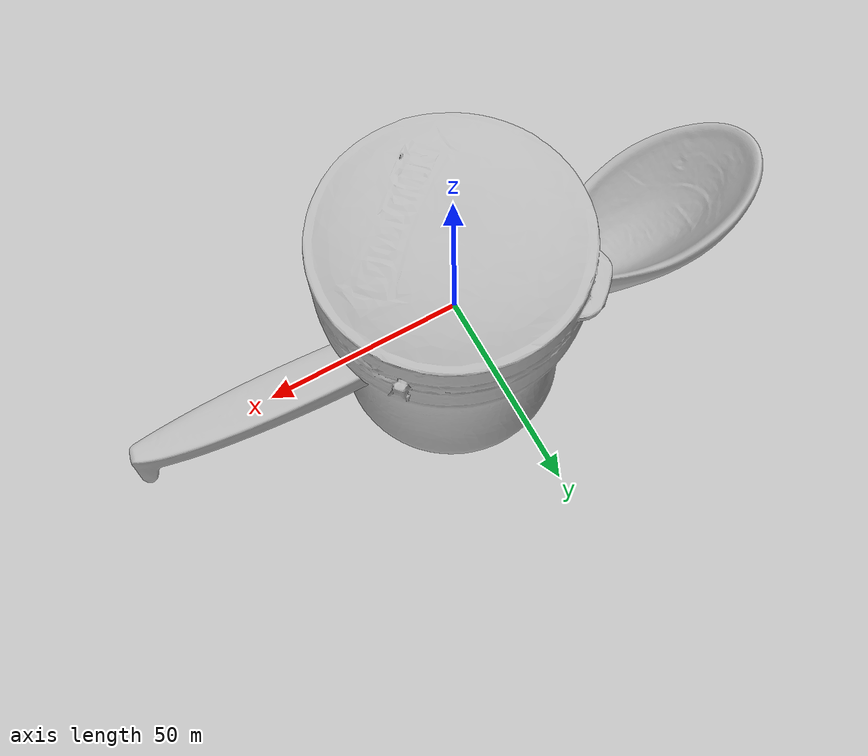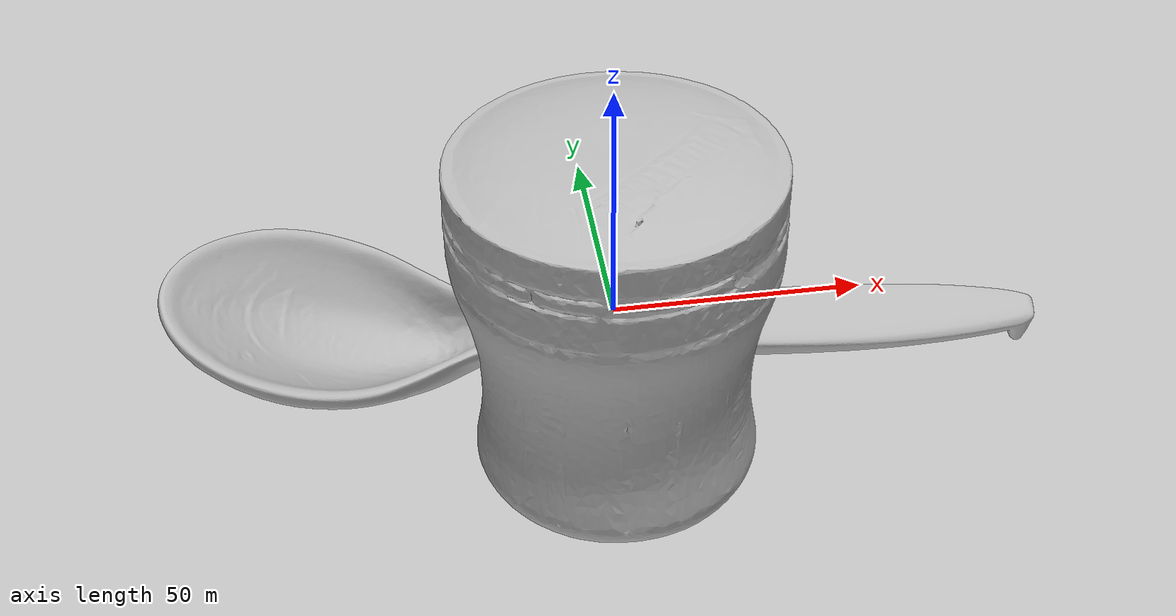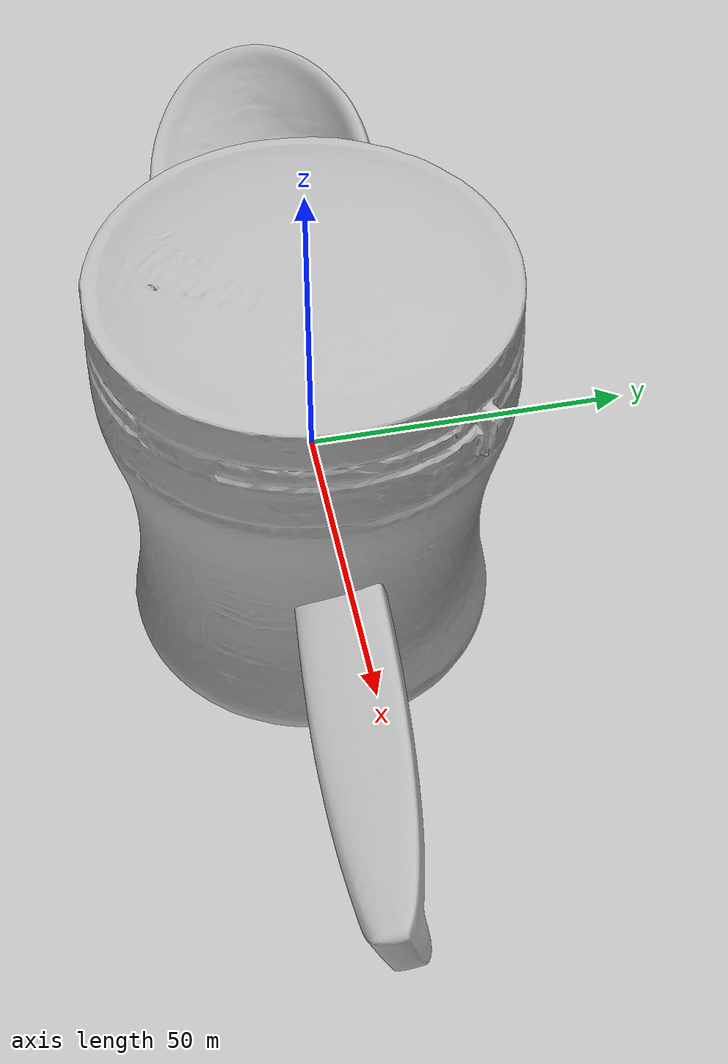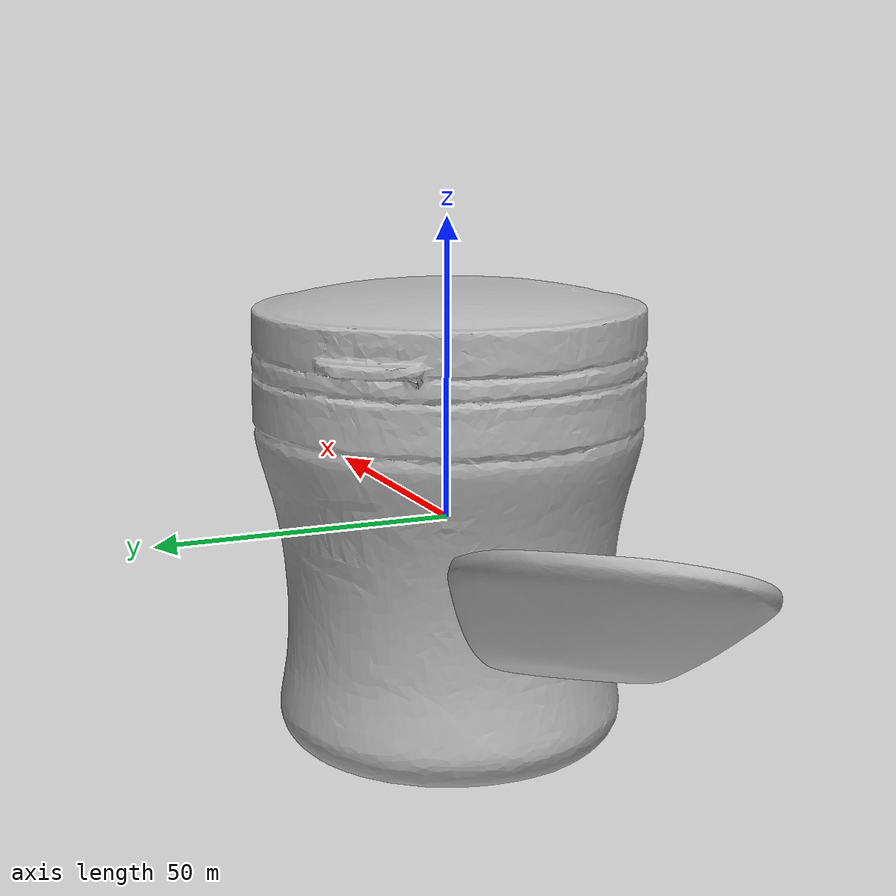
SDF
<sdf version="1.4">
 <world name="default">
  <light name="light1" type="point">
   <pose>0 0 1 0 0 0</pose>
   <diffuse>3 3 3 1</diffuse>
   <specular>3 3 3 1</specular>
  </light>
  <light name="light2" type="point">
   <pose>0 0.5 2 0 0 0</pose>
   <diffuse>1 1 1 1</diffuse>
   <specular>1 1 1 1</specular>
  </light>
  <light name="light3" type="point">
   <pose>0 0.5 2 0 0 0</pose>
   <diffuse>3 3 3 1</diffuse>
   <specular>3 3 3 1</specular>
  </light>
  <scene><ambient>0.7 0.7 0.7</ambient></scene>
  <model name="bottle1">
   <link name="link_bottle1">
    <collision name="default">
     <geometry>
      <mesh><uri>model://green_arrow/collision_meshes/collision.obj</uri><scale>1.0 1.0 1.0</scale></mesh>
     </geometry>
     <surface><friction><ode><mu>0.5</mu><mu2>0.5</mu2></ode></friction></surface>
    </collision>
    <visual name="default">
     <geometry>
      <mesh><uri>model://green_arrow/visual_meshes/visual.dae</uri><scale>1.0 1.0 1.0</scale></mesh>
     </geometry>
    </visual>
    <inertial>
     <mass>0.31872013211250305</mass>
     <pose>0.0005358478520065546 -0.0008270691032521427 0.002210969803854823 -0.06332250060756175 0.012985582117300467 0.6741007804522225</pose>
     <inertia>
      <ixx>0.00023120124</ixx>
      <iyy>0.000230851</iyy>
      <izz>0.0001492862</izz>
      <ixy>0</ixy>
      <ixz>0</ixz>
      <iyz>0</iyz>
     </inertia>
    </inertial>
   </link>
   <pose>-0.2589655816555023 0.35861289501190186 0.03903083875775337 0.03851765220285323 0.02462850136724824 0.07112023168834197</pose>
  </model>
  <model name="bottle2">
   <link name="link_bottle2">
    <collision name="default">
     <geometry>
      <mesh><uri>model://pigeon/collision_meshes/collision.obj</uri><scale>1.0 1.0 1.0</scale></mesh>
     </geometry>
     <surface><friction><ode><mu>0.5</mu><mu2>0.5</mu2></ode></friction></surface>
    </collision>
    <visual name="default">
     <geometry><mesh><uri>model://pigeon/visual_meshes/visual.dae</uri><scale>1.0 1.0 1.0</scale></mesh></geometry>
    </visual>
    <inertial>
     <mass>0.5279804468154907</mass>
     <pose>-9.675472392700613e-05 -0.0001927677367348224 -0.01593620702624321 -0.011704407495178063 -0.0012978199512556723 -0.04198835484465517</pose>
     <inertia>
      <ixx>0.0013198232</ixx>
      <iyy>0.0014089285</iyy>
      <izz>0.000271492</izz>
      <ixy>0</ixy>
      <ixz>0</ixz>
      <iyz>0</iyz>
     </inertia>
    </inertial>
   </link>
   <pose>-0.21999739110469818 0.2401714026927948 0.09864521026611328 1.5191325655704062e-05 4.362703473956169e-06 -0.08579542533617752</pose>
  </model>
  <model name="silverware1">
   <link name="link_silverware1">
    <collision name="default">
     <geometry>
      <mesh><uri>model://doraemon_spoon/collision_meshes/collision.obj</uri><scale>1.0 1.0 1.0</scale></mesh>
     </geometry>
     <surface><friction><ode><mu>0.5</mu><mu2>0.5</mu2></ode></friction></surface>
    </collision>
    <visual name="default">
     <geometry>
      <mesh><uri>model://doraemon_spoon/visual_meshes/visual.dae</uri><scale>1.0 1.0 1.0</scale></mesh>
     </geometry>
    </visual>
    <inertial>
     <mass>0.014849366620182991</mass>
     <pose>-0.022165074944496155 -0.0006374582299031317 -0.0033325457479804754 -0.009146985479672626 0.07380416127774835 -0.014123827206003371</pose>
     <inertia>
      <ixx>1.1631438e-06</ixx>
      <iyy>3.3035012e-05</iyy>
      <izz>3.359665e-05</izz>
      <ixy>0</ixy>
      <ixz>0</ixz>
      <iyz>0</iyz>
     </inertia>
    </inertial>
   </link>
   <pose>0.20964692533016205 0.2460404336452484 0.014739330857992172 0.2790198963044561 -0.01033727938015606 -0.05629929790941578</pose>
  </model>
  <model name="stationery1">
   <link name="link_stationery1">
    <collision name="default">
     <geometry>
      <mesh><uri>model://correction_fuid/collision_meshes/collision.obj</uri><scale>1.0 1.0 1.0</scale></mesh>
     </geometry>
     <surface><friction><ode><mu>0.5</mu><mu2>0.5</mu2></ode></friction></surface>
    </collision>
    <visual name="default">
     <geometry>
      <mesh><uri>model://correction_fuid/visual_meshes/visual.dae</uri><scale>1.0 1.0 1.0</scale></mesh>
     </geometry>
    </visual>
    <inertial>
     <mass>0.03422689810395241</mass>
     <pose>-0.00012557733862195164 -0.0009722901741042733 -0.001618212671019137 -0.010846609605282003 0.019488228935667613 -0.015992456651572746</pose>
     <inertia>
      <ixx>3.3149332e-05</ixx>
      <iyy>2.0062398e-06</iyy>
      <izz>3.4012115e-05</izz>
      <ixy>0</ixy>
      <ixz>0</ixz>
      <iyz>0</iyz>
     </inertia>
    </inertial>
   </link>
   <pose>0.20955048501491547 0.3900589346885681 0.009632828645408154 -0.0017272174465597504 -0.056168321103305247 -0.09917993333982006</pose>
  </model>
  <model name="bowl1">
   <link name="link_bowl1">
    <collision name="default">
     <geometry>
      <mesh><uri>model://doraemon_bowl/collision_meshes/collision.obj</uri><scale>1.0 1.0 1.0</scale></mesh>
     </geometry>
     <surface><friction><ode><mu>0.5</mu><mu2>0.5</mu2></ode></friction></surface>
    </collision>
    <visual name="default">
     <geometry>
      <mesh><uri>model://doraemon_bowl/visual_meshes/visual.dae</uri><scale>1.0 1.0 1.0</scale></mesh>
     </geometry>
    </visual>
    <inertial>
     <mass>0.10659078508615494</mass>
     <pose>-0.014629560522735119 0.00048571196384727955 -0.002086488762870431 -0.00509398386316645 -0.10568401530986889 -0.026426397124795446</pose>
     <inertia>
      <ixx>0.00014780516</ixx>
      <iyy>0.00019451023</iyy>
      <izz>0.00028617028</izz>
      <ixy>0</ixy>
      <ixz>0</ixz>
      <iyz>0</iyz>
     </inertia>
    </inertial>
   </link>
   <pose>0.21016405522823334 -0.2501658499240875 0.025905480608344078 0.008597588936183315 0.006344139215049594 8.886529610456094e-06</pose>
  </model>
  <model name="cup1">
   <link name="link_cup1">
    <collision name="default">
     <geometry>
      <mesh><uri>model://doraemon_cup/collision_meshes/collision.obj</uri><scale>1.0 1.0 1.0</scale></mesh>
     </geometry>
     <surface><friction><ode><mu>0.5</mu><mu2>0.5</mu2></ode></friction></surface>
    </collision>
    <visual name="default">
     <geometry>
      <mesh><uri>model://doraemon_cup/visual_meshes/visual.dae</uri><scale>1.0 1.0 1.0</scale></mesh>
     </geometry>
    </visual>
    <inertial>
     <mass>0.07019124925136566</mass>
     <pose>-0.0003292977053206414 -0.0016633619088679552 -0.0022522560320794582 0.19498543632694942 -0.013693723781048914 -0.3205469926711019</pose>
     <inertia>
      <ixx>9.599299e-05</ixx>
      <iyy>9.2830705e-05</iyy>
      <izz>7.5864096e-05</izz>
      <ixy>0</ixy>
      <ixz>0</ixz>
      <iyz>0</iyz>
     </inertia>
    </inertial>
   </link>
   <pose>0.26964765787124634 -0.3894558548927307 0.046233367174863815 -0.01132264815290217 -0.009341592482258541 -3.5864639353962745e-05</pose>
  </model>
  <model name="plate1">
   <link name="link_plate1">
    <collision name="default">
     <geometry>
      <mesh><uri>model://hello_kitty_plate/collision_meshes/collision.obj</uri><scale>1.0 1.0 1.0</scale></mesh>
     </geometry>
     <surface><friction><ode><mu>0.5</mu><mu2>0.5</mu2></ode></friction></surface>
    </collision>
    <visual name="default">
     <geometry>
      <mesh><uri>model://hello_kitty_plate/visual_meshes/visual.dae</uri><scale>1.0 1.0 1.0</scale></mesh>
     </geometry>
    </visual>
    <inertial>
     <mass>0.03849242627620697</mass>
     <pose>0.007314295973628759 0.00028937432216480374 -0.0027947183698415756 -0.00010431794154861864 -0.007054443662422379 -0.014449020506613262</pose>
     <inertia>
      <ixx>7.4224925e-05</ixx>
      <iyy>0.00014008483</iyy>
      <izz>0.00021270475</izz>
      <ixy>0</ixy>
      <ixz>0</ixz>
      <iyz>0</iyz>
     </inertia>
    </inertial>
   </link>
   <pose>3.018183633685112e-05 -0.400042325258255 0.008291450329124928 0.0004660669227645535 0.004173327918483194 -2.517640996956047e-06</pose>
  </model>
  <model name="box4">
   <link name="link_box4">
    <collision name="default">
     <geometry>
      <mesh><uri>model://wooden_puzzle2/collision_meshes/collision.obj</uri><scale>1.0 1.0 1.0</scale></mesh>
     </geometry>
     <surface><friction><ode><mu>0.5</mu><mu2>0.5</mu2></ode></friction></surface>
    </collision>
    <visual name="default">
     <geometry>
      <mesh><uri>model://wooden_puzzle2/visual_meshes/visual.dae</uri><scale>1.0 1.0 1.0</scale></mesh>
     </geometry>
    </visual>
    <inertial>
     <mass>0.023858843371272087</mass>
     <pose>2.7402536943554878e-05 4.997663199901581e-05 6.587122334167361e-05 -0.1920347142936951 0.6112821219690274 -0.6338705729322873</pose>
     <inertia>
      <ixx>4.4351036e-06</ixx>
      <iyy>4.557319e-06</iyy>
      <izz>4.4924864e-06</izz>
      <ixy>0</ixy>
      <ixz>0</ixz>
      <iyz>0</iyz>
     </inertia>
    </inertial>
   </link>
   <pose>0.01989477500319481 -0.2000235617160797 0.01691773347556591 0.02084869121991278 0.0007210971036594147 0.00023683573594757682</pose>
  </model>
 </world>
</sdf>
